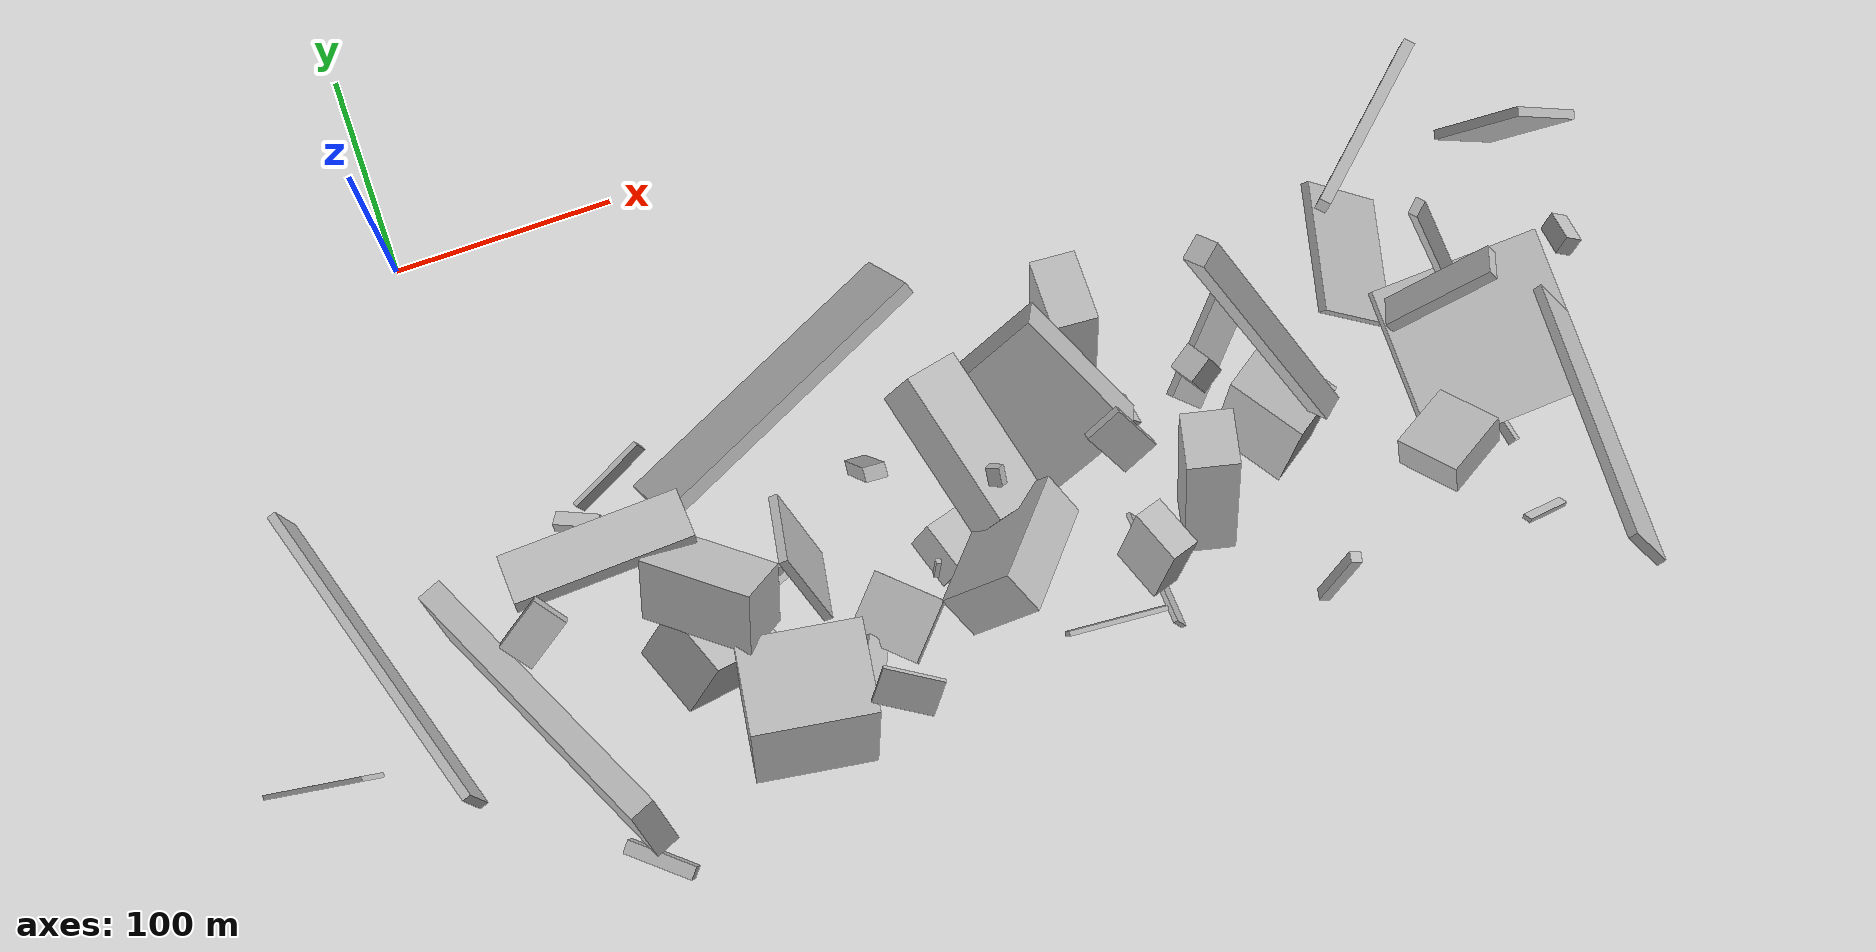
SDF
<sdf version="1.6">
 <world name="default">
  <model name="building_1">
   <static>0</static>
   <pose>376.4160862535972 -146.44438053966266 88.0948599853075 -1.4754081273035888 0.10367343675108107 -0.8332753913145137</pose>
   <link name="link">
    <gravity>0</gravity>
    <pose>0 0 40.0 0 0 0</pose>
    <collision name="collision"><geometry><box><size>5 13 80</size></box></geometry></collision>
    <visual name="visual">
     <cast_shadows>0</cast_shadows>
     <geometry><box><size>5 13 80</size></box></geometry>
     <material>
      <script>
       <uri>model://HANNAS_wall/materials/scripts</uri>
       <uri>model://HANNAS_wall/materials/textures</uri>
       <name>vrc/HANNAS_wall</name>
      </script>
     </material>
    </visual>
   </link>
  </model>
  <model name="building_2">
   <static>0</static>
   <pose>321.794513420715 -165.00204097768082 21.678044561745722 -0.9192522268929308 0.3534638589230469 -2.357106813213301</pose>
   <link name="link">
    <gravity>0</gravity>
    <pose>0 0 2.0 0 0 0</pose>
    <collision name="collision"><geometry><box><size>52 20 4</size></box></geometry></collision>
    <visual name="visual">
     <cast_shadows>0</cast_shadows>
     <geometry><box><size>52 20 4</size></box></geometry>
     <material>
      <script>
       <uri>model://HANNAS_wall/materials/scripts</uri>
       <uri>model://HANNAS_wall/materials/textures</uri>
       <name>vrc/HANNAS_wall</name>
      </script>
     </material>
    </visual>
   </link>
  </model>
  <model name="building_6">
   <static>0</static>
   <pose>377.6880837862823 -206.94020165216173 106.07238548488857 0.8250062733947034 0.40075191401996846 1.1423216451960143</pose>
   <link name="link">
    <gravity>0</gravity>
    <pose>0 0 24.5 0 0 0</pose>
    <collision name="collision"><geometry><box><size>15 5 49</size></box></geometry></collision>
    <visual name="visual">
     <cast_shadows>0</cast_shadows>
     <geometry><box><size>15 5 49</size></box></geometry>
     <material>
      <script>
       <uri>model://HANNAS_wall/materials/scripts</uri>
       <uri>model://HANNAS_wall/materials/textures</uri>
       <name>vrc/HANNAS_wall</name>
      </script>
     </material>
    </visual>
   </link>
  </model>
  <model name="building_7">
   <static>0</static>
   <pose>456.1547920603104 -211.42440820597022 65.46820303982317 -0.9627953414029002 0.5830609603476393 -3.0297623825230766</pose>
   <link name="link">
    <gravity>0</gravity>
    <pose>0 0 75.0 0 0 0</pose>
    <collision name="collision"><geometry><box><size>4 21 150</size></box></geometry></collision>
    <visual name="visual">
     <cast_shadows>0</cast_shadows>
     <geometry><box><size>4 21 150</size></box></geometry>
     <material>
      <script>
       <uri>model://HANNAS_wall/materials/scripts</uri>
       <uri>model://HANNAS_wall/materials/textures</uri>
       <name>vrc/HANNAS_wall</name>
      </script>
     </material>
    </visual>
   </link>
  </model>
  <model name="building_10">
   <static>0</static>
   <pose>334.53113471775816 -237.2734280514877 120.0620985600296 -0.3714505349165468 -0.17752430562716387 0.6885574519491108</pose>
   <link name="link">
    <gravity>0</gravity>
    <pose>0 0 75.0 0 0 0</pose>
    <collision name="collision"><geometry><box><size>10 9 150</size></box></geometry></collision>
    <visual name="visual">
     <cast_shadows>0</cast_shadows>
     <geometry><box><size>10 9 150</size></box></geometry>
     <material>
      <script>
       <uri>model://HANNAS_wall/materials/scripts</uri>
       <uri>model://HANNAS_wall/materials/textures</uri>
       <name>vrc/HANNAS_wall</name>
      </script>
     </material>
    </visual>
   </link>
  </model>
  <model name="building_13">
   <static>0</static>
   <pose>73.87144601459028 -162.85272034467204 54.95055439336721 -1.437825040534785 -0.7685398482779495 -1.2402216918093765</pose>
   <link name="link">
    <gravity>0</gravity>
    <pose>0 0 69.0 0 0 0</pose>
    <collision name="collision"><geometry><box><size>36 6 138</size></box></geometry></collision>
    <visual name="visual">
     <cast_shadows>0</cast_shadows>
     <geometry><box><size>36 6 138</size></box></geometry>
     <material>
      <script>
       <uri>model://HANNAS_wall/materials/scripts</uri>
       <uri>model://HANNAS_wall/materials/textures</uri>
       <name>vrc/HANNAS_wall</name>
      </script>
     </material>
    </visual>
   </link>
  </model>
  <model name="building_16">
   <static>0</static>
   <pose>76.28044837517167 -228.210252111113 111.75078828439057 2.7163113510513712 -0.9697268860755308 1.1883598263035349</pose>
   <link name="link">
    <gravity>0</gravity>
    <pose>0 0 11.5 0 0 0</pose>
    <collision name="collision"><geometry><box><size>29 49 23</size></box></geometry></collision>
    <visual name="visual">
     <cast_shadows>0</cast_shadows>
     <geometry><box><size>29 49 23</size></box></geometry>
     <material>
      <script>
       <uri>model://HANNAS_wall/materials/scripts</uri>
       <uri>model://HANNAS_wall/materials/textures</uri>
       <name>vrc/HANNAS_wall</name>
      </script>
     </material>
    </visual>
   </link>
  </model>
  <model name="building_19">
   <static>0</static>
   <pose>-21.08721508140144 -173.25944725411205 45.36696916930304 1.2660569894729223 0.013864981769873058 0.4083211484136384</pose>
   <link name="link">
    <gravity>0</gravity>
    <pose>0 0 72.5 0 0 0</pose>
    <collision name="collision"><geometry><box><size>11 35 145</size></box></geometry></collision>
    <visual name="visual">
     <cast_shadows>0</cast_shadows>
     <geometry><box><size>11 35 145</size></box></geometry>
     <material>
      <script>
       <uri>model://HANNAS_wall/materials/scripts</uri>
       <uri>model://HANNAS_wall/materials/textures</uri>
       <name>vrc/HANNAS_wall</name>
      </script>
     </material>
    </visual>
   </link>
  </model>
  <model name="building_30">
   <static>0</static>
   <pose>123.02762506412898 -198.14306445434735 29.35350856126475 1.2673694231294488 0.3386167151943627 1.3967399124755793</pose>
   <link name="link">
    <gravity>0</gravity>
    <pose>0 0 2.0 0 0 0</pose>
    <collision name="collision"><geometry><box><size>35 48 4</size></box></geometry></collision>
    <visual name="visual">
     <cast_shadows>0</cast_shadows>
     <geometry><box><size>35 48 4</size></box></geometry>
     <material>
      <script>
       <uri>model://HANNAS_wall/materials/scripts</uri>
       <uri>model://HANNAS_wall/materials/textures</uri>
       <name>vrc/HANNAS_wall</name>
      </script>
     </material>
    </visual>
   </link>
  </model>
  <model name="building_32">
   <static>0</static>
   <pose>219.72203453452343 -182.26169040566378 52.562105206409456 0.7327746189840624 0.7828629512888013 1.1082799228891282</pose>
   <link name="link">
    <gravity>0</gravity>
    <pose>0 0 23.5 0 0 0</pose>
    <collision name="collision"><geometry><box><size>22 63 47</size></box></geometry></collision>
    <visual name="visual">
     <cast_shadows>0</cast_shadows>
     <geometry><box><size>22 63 47</size></box></geometry>
     <material>
      <script>
       <uri>model://HANNAS_wall/materials/scripts</uri>
       <uri>model://HANNAS_wall/materials/textures</uri>
       <name>vrc/HANNAS_wall</name>
      </script>
     </material>
    </visual>
   </link>
  </model>
  <model name="building_36">
   <static>0</static>
   <pose>431.1159291759136 -245.11354055889097 32.46296030191151 0.2168859287584645 1.2719765623015247 1.8361699198240584</pose>
   <link name="link">
    <gravity>0</gravity>
    <pose>0 0 36.0 0 0 0</pose>
    <collision name="collision"><geometry><box><size>5 79 72</size></box></geometry></collision>
    <visual name="visual">
     <cast_shadows>0</cast_shadows>
     <geometry><box><size>5 79 72</size></box></geometry>
     <material>
      <script>
       <uri>model://HANNAS_wall/materials/scripts</uri>
       <uri>model://HANNAS_wall/materials/textures</uri>
       <name>vrc/HANNAS_wall</name>
      </script>
     </material>
    </visual>
   </link>
  </model>
  <model name="building_38">
   <static>0</static>
   <pose>69.71229761751196 -233.9060467844398 51.393012997485016 -0.01229547052070651 0.6540962113990447 0.3411792793053765</pose>
   <link name="link">
    <gravity>0</gravity>
    <pose>0 0 14.0 0 0 0</pose>
    <collision name="collision"><geometry><box><size>38 32 28</size></box></geometry></collision>
    <visual name="visual">
     <cast_shadows>0</cast_shadows>
     <geometry><box><size>38 32 28</size></box></geometry>
     <material>
      <script>
       <uri>model://HANNAS_wall/materials/scripts</uri>
       <uri>model://HANNAS_wall/materials/textures</uri>
       <name>vrc/HANNAS_wall</name>
      </script>
     </material>
    </visual>
   </link>
  </model>
  <model name="building_40">
   <static>0</static>
   <pose>208.21607410145052 -196.8359088065622 104.31963041390765 -0.5432262630070178 1.1088626042540912 2.8927682375566017</pose>
   <link name="link">
    <gravity>0</gravity>
    <pose>0 0 12.5 0 0 0</pose>
    <collision name="collision"><geometry><box><size>22 66 25</size></box></geometry></collision>
    <visual name="visual">
     <cast_shadows>0</cast_shadows>
     <geometry><box><size>22 66 25</size></box></geometry>
     <material>
      <script>
       <uri>model://HANNAS_wall/materials/scripts</uri>
       <uri>model://HANNAS_wall/materials/textures</uri>
       <name>vrc/HANNAS_wall</name>
      </script>
     </material>
    </visual>
   </link>
  </model>
  <model name="building_41">
   <static>0</static>
   <pose>339.4016158458314 -207.8411635292803 58.82418278144763 2.6195387551232097 -1.4346890549597155 -2.037512713990634</pose>
   <link name="link">
    <gravity>0</gravity>
    <pose>0 0 12.0 0 0 0</pose>
    <collision name="collision"><geometry><box><size>97 35 24</size></box></geometry></collision>
    <visual name="visual">
     <cast_shadows>0</cast_shadows>
     <geometry><box><size>97 35 24</size></box></geometry>
     <material>
      <script>
       <uri>model://HANNAS_wall/materials/scripts</uri>
       <uri>model://HANNAS_wall/materials/textures</uri>
       <name>vrc/HANNAS_wall</name>
      </script>
     </material>
    </visual>
   </link>
  </model>
  <model name="building_45">
   <static>0</static>
   <pose>266.34287215184196 -219.69491062699043 78.30885913953088 0.647088847061912 0.4036301565599312 -2.841310848615049</pose>
   <link name="link">
    <gravity>0</gravity>
    <pose>0 0 13.0 0 0 0</pose>
    <collision name="collision"><geometry><box><size>17 4 26</size></box></geometry></collision>
    <visual name="visual">
     <cast_shadows>0</cast_shadows>
     <geometry><box><size>17 4 26</size></box></geometry>
     <material>
      <script>
       <uri>model://HANNAS_wall/materials/scripts</uri>
       <uri>model://HANNAS_wall/materials/textures</uri>
       <name>vrc/HANNAS_wall</name>
      </script>
     </material>
    </visual>
   </link>
  </model>
  <model name="building_47">
   <static>0</static>
   <pose>405.29904948028786 -189.8070448667247 102.40829468979092 1.3307468465323518 0.2022390762472017 2.2358647323312844</pose>
   <link name="link">
    <gravity>0</gravity>
    <pose>0 0 3.5 0 0 0</pose>
    <collision name="collision"><geometry><box><size>4 124 7</size></box></geometry></collision>
    <visual name="visual">
     <cast_shadows>0</cast_shadows>
     <geometry><box><size>4 124 7</size></box></geometry>
     <material>
      <script>
       <uri>model://HANNAS_wall/materials/scripts</uri>
       <uri>model://HANNAS_wall/materials/textures</uri>
       <name>vrc/HANNAS_wall</name>
      </script>
     </material>
    </visual>
   </link>
  </model>
  <model name="building_48">
   <static>0</static>
   <pose>47.5664360403844 -182.754247729908 112.25746754621912 1.4350996952252737 0.03219537380437962 0.04291236057411192</pose>
   <link name="link">
    <gravity>0</gravity>
    <pose>0 0 11.0 0 0 0</pose>
    <collision name="collision"><geometry><box><size>74 8 22</size></box></geometry></collision>
    <visual name="visual">
     <cast_shadows>0</cast_shadows>
     <geometry><box><size>74 8 22</size></box></geometry>
     <material>
      <script>
       <uri>model://HANNAS_wall/materials/scripts</uri>
       <uri>model://HANNAS_wall/materials/textures</uri>
       <name>vrc/HANNAS_wall</name>
      </script>
     </material>
    </visual>
   </link>
  </model>
  <model name="building_49">
   <static>0</static>
   <pose>178.5500470559251 -216.48935631171645 27.065074063788543 -1.8798940547057987 0.15693917510596456 -1.2649382148744324</pose>
   <link name="link">
    <gravity>0</gravity>
    <pose>0 0 17.5 0 0 0</pose>
    <collision name="collision"><geometry><box><size>23 21 35</size></box></geometry></collision>
    <visual name="visual">
     <cast_shadows>0</cast_shadows>
     <geometry><box><size>23 21 35</size></box></geometry>
     <material>
      <script>
       <uri>model://HANNAS_wall/materials/scripts</uri>
       <uri>model://HANNAS_wall/materials/textures</uri>
       <name>vrc/HANNAS_wall</name>
      </script>
     </material>
    </visual>
   </link>
  </model>
  <model name="building_50">
   <static>0</static>
   <pose>144.1132150248652 -219.654107264043 9.375919308845015 -1.444747890181324 0.2588278696408259 -2.342876292443623</pose>
   <link name="link">
    <gravity>0</gravity>
    <pose>0 0 16.5 0 0 0</pose>
    <collision name="collision"><geometry><box><size>29 4 33</size></box></geometry></collision>
    <visual name="visual">
     <cast_shadows>0</cast_shadows>
     <geometry><box><size>29 4 33</size></box></geometry>
     <material>
      <script>
       <uri>model://HANNAS_wall/materials/scripts</uri>
       <uri>model://HANNAS_wall/materials/textures</uri>
       <name>vrc/HANNAS_wall</name>
      </script>
     </material>
    </visual>
   </link>
  </model>
  <model name="building_51">
   <static>0</static>
   <pose>392.43423570787127 -149.70862035455582 29.455784644858227 0.16296645516141084 0.8119012657555633 -0.1261879468170689</pose>
   <link name="link">
    <gravity>0</gravity>
    <pose>0 0 2.0 0 0 0</pose>
    <collision name="collision"><geometry><box><size>50 58 4</size></box></geometry></collision>
    <visual name="visual">
     <cast_shadows>0</cast_shadows>
     <geometry><box><size>50 58 4</size></box></geometry>
     <material>
      <script>
       <uri>model://HANNAS_wall/materials/scripts</uri>
       <uri>model://HANNAS_wall/materials/textures</uri>
       <name>vrc/HANNAS_wall</name>
      </script>
     </material>
    </visual>
   </link>
  </model>
  <model name="building_52">
   <static>0</static>
   <pose>446.0597380779745 -134.97897153999878 82.29437542633607 -0.3258031193941431 -0.623008873922761 3.098869413708304</pose>
   <link name="link">
    <gravity>0</gravity>
    <pose>0 0 22.5 0 0 0</pose>
    <collision name="collision"><geometry><box><size>36 4 45</size></box></geometry></collision>
    <visual name="visual">
     <cast_shadows>0</cast_shadows>
     <geometry><box><size>36 4 45</size></box></geometry>
     <material>
      <script>
       <uri>model://HANNAS_wall/materials/scripts</uri>
       <uri>model://HANNAS_wall/materials/textures</uri>
       <name>vrc/HANNAS_wall</name>
      </script>
     </material>
    </visual>
   </link>
  </model>
  <model name="building_56">
   <static>0</static>
   <pose>305.2661999160035 -234.03345948561497 48.5193642904351 1.623186580596972 -0.11394968980806865 -1.833053454094779</pose>
   <link name="link">
    <gravity>0</gravity>
    <pose>0 0 11.0 0 0 0</pose>
    <collision name="collision"><geometry><box><size>25 84 22</size></box></geometry></collision>
    <visual name="visual">
     <cast_shadows>0</cast_shadows>
     <geometry><box><size>25 84 22</size></box></geometry>
     <material>
      <script>
       <uri>model://HANNAS_wall/materials/scripts</uri>
       <uri>model://HANNAS_wall/materials/textures</uri>
       <name>vrc/HANNAS_wall</name>
      </script>
     </material>
    </visual>
   </link>
  </model>
  <model name="building_61">
   <static>0</static>
   <pose>270.5190102062255 -247.91761900706388 43.582941829239566 -1.382416214101956 -0.0009890770831055527 1.9011443520921252</pose>
   <link name="link">
    <gravity>0</gravity>
    <pose>0 0 6.5 0 0 0</pose>
    <collision name="collision"><geometry><box><size>24 40 13</size></box></geometry></collision>
    <visual name="visual">
     <cast_shadows>0</cast_shadows>
     <geometry><box><size>24 40 13</size></box></geometry>
     <material>
      <script>
       <uri>model://HANNAS_wall/materials/scripts</uri>
       <uri>model://HANNAS_wall/materials/textures</uri>
       <name>vrc/HANNAS_wall</name>
      </script>
     </material>
    </visual>
   </link>
  </model>
  <model name="building_65">
   <static>0</static>
   <pose>301.52865763682723 -184.75275181556137 69.29679601368818 1.5136294423400503 -0.3219227767838976 0.5437487758179212</pose>
   <link name="link">
    <gravity>0</gravity>
    <pose>0 0 5.5 0 0 0</pose>
    <collision name="collision"><geometry><box><size>12 34 11</size></box></geometry></collision>
    <visual name="visual">
     <cast_shadows>0</cast_shadows>
     <geometry><box><size>12 34 11</size></box></geometry>
     <material>
      <script>
       <uri>model://HANNAS_wall/materials/scripts</uri>
       <uri>model://HANNAS_wall/materials/textures</uri>
       <name>vrc/HANNAS_wall</name>
      </script>
     </material>
    </visual>
   </link>
  </model>
  <model name="building_67">
   <static>0</static>
   <pose>224.22293992743573 -173.05487060261564 13.4698372061135 0.10100348889524295 -0.01822768737906507 0.3372163114139222</pose>
   <link name="link">
    <gravity>0</gravity>
    <pose>0 0 6.0 0 0 0</pose>
    <collision name="collision"><geometry><box><size>32 24 12</size></box></geometry></collision>
    <visual name="visual">
     <cast_shadows>0</cast_shadows>
     <geometry><box><size>32 24 12</size></box></geometry>
     <material>
      <script>
       <uri>model://HANNAS_wall/materials/scripts</uri>
       <uri>model://HANNAS_wall/materials/textures</uri>
       <name>vrc/HANNAS_wall</name>
      </script>
     </material>
    </visual>
   </link>
  </model>
  <model name="building_70">
   <static>0</static>
   <pose>133.91808735505276 -258.1740222888629 13.429921654683918 -1.9083124488739125 -0.8024936866048763 -0.18317648938434103</pose>
   <link name="link">
    <gravity>0</gravity>
    <pose>0 0 12.0 0 0 0</pose>
    <collision name="collision"><geometry><box><size>5 11 24</size></box></geometry></collision>
    <visual name="visual">
     <cast_shadows>0</cast_shadows>
     <geometry><box><size>5 11 24</size></box></geometry>
     <material>
      <script>
       <uri>model://HANNAS_wall/materials/scripts</uri>
       <uri>model://HANNAS_wall/materials/textures</uri>
       <name>vrc/HANNAS_wall</name>
      </script>
     </material>
    </visual>
   </link>
  </model>
  <model name="building_75">
   <static>0</static>
   <pose>400.6250222052582 -249.1896351456278 75.7751723026611 1.422178347306543 -0.33498823862966004 -0.9894152875171716</pose>
   <link name="link">
    <gravity>0</gravity>
    <pose>0 0 15.5 0 0 0</pose>
    <collision name="collision"><geometry><box><size>28 15 31</size></box></geometry></collision>
    <visual name="visual">
     <cast_shadows>0</cast_shadows>
     <geometry><box><size>28 15 31</size></box></geometry>
     <material>
      <script>
       <uri>model://HANNAS_wall/materials/scripts</uri>
       <uri>model://HANNAS_wall/materials/textures</uri>
       <name>vrc/HANNAS_wall</name>
      </script>
     </material>
    </visual>
   </link>
  </model>
  <model name="building_79">
   <static>0</static>
   <pose>274.1879529234945 -141.86173981418312 42.276795607848264 1.4237062831154985 1.4327764275156563 -1.781329783606698</pose>
   <link name="link">
    <gravity>0</gravity>
    <pose>0 0 10.0 0 0 0</pose>
    <collision name="collision"><geometry><box><size>55 34 20</size></box></geometry></collision>
    <visual name="visual">
     <cast_shadows>0</cast_shadows>
     <geometry><box><size>55 34 20</size></box></geometry>
     <material>
      <script>
       <uri>model://HANNAS_wall/materials/scripts</uri>
       <uri>model://HANNAS_wall/materials/textures</uri>
       <name>vrc/HANNAS_wall</name>
      </script>
     </material>
    </visual>
   </link>
  </model>
  <model name="building_83">
   <static>0</static>
   <pose>432.1510319201117 -244.29890692329386 7.896499653876186 -0.24949355145050797 -0.7691261145406426 -2.7520125231913575</pose>
   <link name="link">
    <gravity>0</gravity>
    <pose>0 0 2.0 0 0 0</pose>
    <collision name="collision"><geometry><box><size>4 10 4</size></box></geometry></collision>
    <visual name="visual">
     <cast_shadows>0</cast_shadows>
     <geometry><box><size>4 10 4</size></box></geometry>
     <material>
      <script>
       <uri>model://HANNAS_wall/materials/scripts</uri>
       <uri>model://HANNAS_wall/materials/textures</uri>
       <name>vrc/HANNAS_wall</name>
      </script>
     </material>
    </visual>
   </link>
  </model>
  <model name="building_88">
   <static>0</static>
   <pose>-55.522958240046215 -182.3387185676772 38.78886397275471 -0.1850254326549465 1.4135359113547836 0.10400236901937494</pose>
   <link name="link">
    <gravity>0</gravity>
    <pose>0 0 2.0 0 0 0</pose>
    <collision name="collision"><geometry><box><size>23 150 4</size></box></geometry></collision>
    <visual name="visual">
     <cast_shadows>0</cast_shadows>
     <geometry><box><size>23 150 4</size></box></geometry>
     <material>
      <script>
       <uri>model://HANNAS_wall/materials/scripts</uri>
       <uri>model://HANNAS_wall/materials/textures</uri>
       <name>vrc/HANNAS_wall</name>
      </script>
     </material>
    </visual>
   </link>
  </model>
  <model name="building_96">
   <static>0</static>
   <pose>159.7985385702707 -184.90714211650027 83.80276856939912 3.0403443130573073 -1.171514466473433 -1.5342305234087912</pose>
   <link name="link">
    <gravity>0</gravity>
    <pose>0 0 3.0 0 0 0</pose>
    <collision name="collision"><geometry><box><size>69 9 6</size></box></geometry></collision>
    <visual name="visual">
     <cast_shadows>0</cast_shadows>
     <geometry><box><size>69 9 6</size></box></geometry>
     <material>
      <script>
       <uri>model://HANNAS_wall/materials/scripts</uri>
       <uri>model://HANNAS_wall/materials/textures</uri>
       <name>vrc/HANNAS_wall</name>
      </script>
     </material>
    </visual>
   </link>
  </model>
  <model name="building_101">
   <static>0</static>
   <pose>267.20770520478004 -250.0516005664052 12.26410336552712 1.9546295037365746 -0.07900097407731528 -1.5561285095093795</pose>
   <link name="link">
    <gravity>0</gravity>
    <pose>0 0 1.0 0 0 0</pose>
    <collision name="collision"><geometry><box><size>53 12 2</size></box></geometry></collision>
    <visual name="visual">
     <cast_shadows>0</cast_shadows>
     <geometry><box><size>53 12 2</size></box></geometry>
     <material>
      <script>
       <uri>model://HANNAS_wall/materials/scripts</uri>
       <uri>model://HANNAS_wall/materials/textures</uri>
       <name>vrc/HANNAS_wall</name>
      </script>
     </material>
    </visual>
   </link>
  </model>
  <model name="building_102">
   <static>0</static>
   <pose>168.03374756978437 -247.47713750630282 119.3058316439384 -1.864695157224409 -1.4699283951301598 -1.4267439228362921</pose>
   <link name="link">
    <gravity>0</gravity>
    <pose>0 0 1.0 0 0 0</pose>
    <collision name="collision"><geometry><box><size>27 2 2</size></box></geometry></collision>
    <visual name="visual">
     <cast_shadows>0</cast_shadows>
     <geometry><box><size>27 2 2</size></box></geometry>
     <material>
      <script>
       <uri>model://HANNAS_wall/materials/scripts</uri>
       <uri>model://HANNAS_wall/materials/textures</uri>
       <name>vrc/HANNAS_wall</name>
      </script>
     </material>
    </visual>
   </link>
  </model>
  <model name="building_103">
   <static>0</static>
   <pose>277.8994877261525 -183.48308314380043 20.946866782254656 -0.38757963992937416 -0.6449699880776437 0.30328118765068673</pose>
   <link name="link">
    <gravity>0</gravity>
    <pose>0 0 11.5 0 0 0</pose>
    <collision name="collision"><geometry><box><size>10 17 23</size></box></geometry></collision>
    <visual name="visual">
     <cast_shadows>0</cast_shadows>
     <geometry><box><size>10 17 23</size></box></geometry>
     <material>
      <script>
       <uri>model://HANNAS_wall/materials/scripts</uri>
       <uri>model://HANNAS_wall/materials/textures</uri>
       <name>vrc/HANNAS_wall</name>
      </script>
     </material>
    </visual>
   </link>
  </model>
  <model name="building_105">
   <static>0</static>
   <pose>131.66439881217755 -270.5817469727786 63.159996007680434 1.525838846659204 -0.002797126998710853 -1.7225952000563374</pose>
   <link name="link">
    <gravity>0</gravity>
    <pose>0 0 25.5 0 0 0</pose>
    <collision name="collision"><geometry><box><size>39 80 51</size></box></geometry></collision>
    <visual name="visual">
     <cast_shadows>0</cast_shadows>
     <geometry><box><size>39 80 51</size></box></geometry>
     <material>
      <script>
       <uri>model://HANNAS_wall/materials/scripts</uri>
       <uri>model://HANNAS_wall/materials/textures</uri>
       <name>vrc/HANNAS_wall</name>
      </script>
     </material>
    </visual>
   </link>
  </model>
  <model name="building_107">
   <static>0</static>
   <pose>-63.65637431343583 -239.4268312291731 77.04904653918929 2.3010378808007137 0.25249020751371776 -1.7267643502417032</pose>
   <link name="link">
    <gravity>0</gravity>
    <pose>0 0 32.0 0 0 0</pose>
    <collision name="collision"><geometry><box><size>2 11 64</size></box></geometry></collision>
    <visual name="visual">
     <cast_shadows>0</cast_shadows>
     <geometry><box><size>2 11 64</size></box></geometry>
     <material>
      <script>
       <uri>model://HANNAS_wall/materials/scripts</uri>
       <uri>model://HANNAS_wall/materials/textures</uri>
       <name>vrc/HANNAS_wall</name>
      </script>
     </material>
    </visual>
   </link>
  </model>
  <model name="building_113">
   <static>0</static>
   <pose>102.7142438580894 -203.83040355673478 28.129540244819943 0.546626106138914 0.6790400201653187 0.5924582865316256</pose>
   <link name="link">
    <gravity>0</gravity>
    <pose>0 0 9.5 0 0 0</pose>
    <collision name="collision"><geometry><box><size>28 3 19</size></box></geometry></collision>
    <visual name="visual">
     <cast_shadows>0</cast_shadows>
     <geometry><box><size>28 3 19</size></box></geometry>
     <material>
      <script>
       <uri>model://HANNAS_wall/materials/scripts</uri>
       <uri>model://HANNAS_wall/materials/textures</uri>
       <name>vrc/HANNAS_wall</name>
      </script>
     </material>
    </visual>
   </link>
  </model>
  <model name="building_117">
   <static>0</static>
   <pose>142.66570472252408 -288.22872322295393 110.95673350827113 2.7851675061072285 0.8399366110844774 -2.360116761944098</pose>
   <link name="link">
    <gravity>0</gravity>
    <pose>0 0 1.0 0 0 0</pose>
    <collision name="collision"><geometry><box><size>17 25 2</size></box></geometry></collision>
    <visual name="visual">
     <cast_shadows>0</cast_shadows>
     <geometry><box><size>17 25 2</size></box></geometry>
     <material>
      <script>
       <uri>model://HANNAS_wall/materials/scripts</uri>
       <uri>model://HANNAS_wall/materials/textures</uri>
       <name>vrc/HANNAS_wall</name>
      </script>
     </material>
    </visual>
   </link>
  </model>
  <model name="building_119">
   <static>0</static>
   <pose>203.0984146770996 -256.49117354052646 101.98063527882988 0.8512802064502826 -0.45799046175382613 -2.2558197157811812</pose>
   <link name="link">
    <gravity>0</gravity>
    <pose>0 0 10.0 0 0 0</pose>
    <collision name="collision"><geometry><box><size>57 34 20</size></box></geometry></collision>
    <visual name="visual">
     <cast_shadows>0</cast_shadows>
     <geometry><box><size>57 34 20</size></box></geometry>
     <material>
      <script>
       <uri>model://HANNAS_wall/materials/scripts</uri>
       <uri>model://HANNAS_wall/materials/textures</uri>
       <name>vrc/HANNAS_wall</name>
      </script>
     </material>
    </visual>
   </link>
  </model>
  <model name="building_122">
   <static>0</static>
   <pose>49.52047839633025 -146.71579980360838 6.860660211060448 1.721139812689985 -0.2662675584586982 -2.0806035279353967</pose>
   <link name="link">
    <gravity>0</gravity>
    <pose>0 0 10.0 0 0 0</pose>
    <collision name="collision"><geometry><box><size>7 5 20</size></box></geometry></collision>
    <visual name="visual">
     <cast_shadows>0</cast_shadows>
     <geometry><box><size>7 5 20</size></box></geometry>
     <material>
      <script>
       <uri>model://HANNAS_wall/materials/scripts</uri>
       <uri>model://HANNAS_wall/materials/textures</uri>
       <name>vrc/HANNAS_wall</name>
      </script>
     </material>
    </visual>
   </link>
  </model>
  <model name="building_124">
   <static>0</static>
   <pose>200.64017776794554 -220.34697295404845 123.00725631466685 -0.9478579566133445 -0.6458919885557948 -2.539861391881888</pose>
   <link name="link">
    <gravity>0</gravity>
    <pose>0 0 3.0 0 0 0</pose>
    <collision name="collision"><geometry><box><size>4 8 6</size></box></geometry></collision>
    <visual name="visual">
     <cast_shadows>0</cast_shadows>
     <geometry><box><size>4 8 6</size></box></geometry>
     <material>
      <script>
       <uri>model://HANNAS_wall/materials/scripts</uri>
       <uri>model://HANNAS_wall/materials/textures</uri>
       <name>vrc/HANNAS_wall</name>
      </script>
     </material>
    </visual>
   </link>
  </model>
  <model name="building_127">
   <static>0</static>
   <pose>62.973603981812815 -188.73708038706314 172.46038672008893 -1.630431513536524 -0.24470907113508694 0.407734603939296</pose>
   <link name="link">
    <gravity>0</gravity>
    <pose>0 0 1.0 0 0 0</pose>
    <collision name="collision"><geometry><box><size>32 9 2</size></box></geometry></collision>
    <visual name="visual">
     <cast_shadows>0</cast_shadows>
     <geometry><box><size>32 9 2</size></box></geometry>
     <material>
      <script>
       <uri>model://HANNAS_wall/materials/scripts</uri>
       <uri>model://HANNAS_wall/materials/textures</uri>
       <name>vrc/HANNAS_wall</name>
      </script>
     </material>
    </visual>
   </link>
  </model>
  <model name="building_136">
   <static>0</static>
   <pose>417.880873814417 -291.40508166710237 56.365253318914355 0.9429316626141195 -0.9231551110206396 0.9491937590182997</pose>
   <link name="link">
    <gravity>0</gravity>
    <pose>0 0 2.0 0 0 0</pose>
    <collision name="collision"><geometry><box><size>2 24 4</size></box></geometry></collision>
    <visual name="visual">
     <cast_shadows>0</cast_shadows>
     <geometry><box><size>2 24 4</size></box></geometry>
     <material>
      <script>
       <uri>model://HANNAS_wall/materials/scripts</uri>
       <uri>model://HANNAS_wall/materials/textures</uri>
       <name>vrc/HANNAS_wall</name>
      </script>
     </material>
    </visual>
   </link>
  </model>
  <model name="building_138">
   <static>0</static>
   <pose>338.9108362024154 -282.7110286696985 21.11241344932415 0.4486611098482257 1.2989145802330921 -2.9555723590360583</pose>
   <link name="link">
    <gravity>0</gravity>
    <pose>0 0 2.5 0 0 0</pose>
    <collision name="collision"><geometry><box><size>39 5 5</size></box></geometry></collision>
    <visual name="visual">
     <cast_shadows>0</cast_shadows>
     <geometry><box><size>39 5 5</size></box></geometry>
     <material>
      <script>
       <uri>model://HANNAS_wall/materials/scripts</uri>
       <uri>model://HANNAS_wall/materials/textures</uri>
       <name>vrc/HANNAS_wall</name>
      </script>
     </material>
    </visual>
   </link>
  </model>
  <model name="building_140">
   <static>0</static>
   <pose>17.989664379077315 -285.17813580366476 11.650032281259318 -1.5285805787127957 -1.2704330373543462 -2.3362442468300193</pose>
   <link name="link">
    <gravity>0</gravity>
    <pose>0 0 15.5 0 0 0</pose>
    <collision name="collision"><geometry><box><size>7 6 31</size></box></geometry></collision>
    <visual name="visual">
     <cast_shadows>0</cast_shadows>
     <geometry><box><size>7 6 31</size></box></geometry>
     <material>
      <script>
       <uri>model://HANNAS_wall/materials/scripts</uri>
       <uri>model://HANNAS_wall/materials/textures</uri>
       <name>vrc/HANNAS_wall</name>
      </script>
     </material>
    </visual>
   </link>
  </model>
  <model name="building_143">
   <static>0</static>
   <pose>71.11305733732497 -193.61266967434446 33.182747757382366 0.6991957218223621 -0.02268375235322065 0.14330963931377966</pose>
   <link name="link">
    <gravity>0</gravity>
    <pose>0 0 2.5 0 0 0</pose>
    <collision name="collision"><geometry><box><size>7 41 5</size></box></geometry></collision>
    <visual name="visual">
     <cast_shadows>0</cast_shadows>
     <geometry><box><size>7 41 5</size></box></geometry>
     <material>
      <script>
       <uri>model://HANNAS_wall/materials/scripts</uri>
       <uri>model://HANNAS_wall/materials/textures</uri>
       <name>vrc/HANNAS_wall</name>
      </script>
     </material>
    </visual>
   </link>
  </model>
  <model name="building_147">
   <static>0</static>
   <pose>462.88732750716895 -199.8716555060521 10.094232148506029 2.3592151522360907 -0.2752023820138104 -0.10574632707115743</pose>
   <link name="link">
    <gravity>0</gravity>
    <pose>0 0 6.5 0 0 0</pose>
    <collision name="collision"><geometry><box><size>16 4 13</size></box></geometry></collision>
    <visual name="visual">
     <cast_shadows>0</cast_shadows>
     <geometry><box><size>16 4 13</size></box></geometry>
     <material>
      <script>
       <uri>model://HANNAS_wall/materials/scripts</uri>
       <uri>model://HANNAS_wall/materials/textures</uri>
       <name>vrc/HANNAS_wall</name>
      </script>
     </material>
    </visual>
   </link>
  </model>
  <model name="building_150">
   <static>0</static>
   <pose>233.13258003543402 -282.4204248065119 81.16432474556058 2.6144973487612866 0.3679969496624727 -1.7283467154143037</pose>
   <link name="link">
    <gravity>0</gravity>
    <pose>0 0 1.5 0 0 0</pose>
    <collision name="collision"><geometry><box><size>2 50 3</size></box></geometry></collision>
    <visual name="visual">
     <cast_shadows>0</cast_shadows>
     <geometry><box><size>2 50 3</size></box></geometry>
     <material>
      <script>
       <uri>model://HANNAS_wall/materials/scripts</uri>
       <uri>model://HANNAS_wall/materials/textures</uri>
       <name>vrc/HANNAS_wall</name>
      </script>
     </material>
    </visual>
   </link>
  </model>
  <model name="building_151">
   <static>0</static>
   <pose>24.782122521712477 -215.01797386616877 128.65727189732198 -2.031124104991702 -0.39170763245073903 2.2570078119536845</pose>
   <link name="link">
    <gravity>0</gravity>
    <pose>0 0 11.5 0 0 0</pose>
    <collision name="collision"><geometry><box><size>15 6 23</size></box></geometry></collision>
    <visual name="visual">
     <cast_shadows>0</cast_shadows>
     <geometry><box><size>15 6 23</size></box></geometry>
     <material>
      <script>
       <uri>model://HANNAS_wall/materials/scripts</uri>
       <uri>model://HANNAS_wall/materials/textures</uri>
       <name>vrc/HANNAS_wall</name>
      </script>
     </material>
    </visual>
   </link>
  </model>
  <model name="building_152">
   <static>0</static>
   <pose>480.4737683280822 -182.29321618448333 52.39821354059517 -0.6804931395208593 -0.9162041633022798 0.5085093492718613</pose>
   <link name="link">
    <gravity>0</gravity>
    <pose>0 0 4.0 0 0 0</pose>
    <collision name="collision"><geometry><box><size>9 16 8</size></box></geometry></collision>
    <visual name="visual">
     <cast_shadows>0</cast_shadows>
     <geometry><box><size>9 16 8</size></box></geometry>
     <material>
      <script>
       <uri>model://HANNAS_wall/materials/scripts</uri>
       <uri>model://HANNAS_wall/materials/textures</uri>
       <name>vrc/HANNAS_wall</name>
      </script>
     </material>
    </visual>
   </link>
  </model>
  <model name="building_153">
   <static>0</static>
   <pose>108.38468066157466 -274.61487574239436 8.331901908324504 0.883382184194734 -1.182935145756927 -0.9375545658471267</pose>
   <link name="link">
    <gravity>0</gravity>
    <pose>0 0 1.5 0 0 0</pose>
    <collision name="collision"><geometry><box><size>2 14 3</size></box></geometry></collision>
    <visual name="visual">
     <cast_shadows>0</cast_shadows>
     <geometry><box><size>2 14 3</size></box></geometry>
     <material>
      <script>
       <uri>model://HANNAS_wall/materials/scripts</uri>
       <uri>model://HANNAS_wall/materials/textures</uri>
       <name>vrc/HANNAS_wall</name>
      </script>
     </material>
    </visual>
   </link>
  </model>
 </world>
</sdf>
